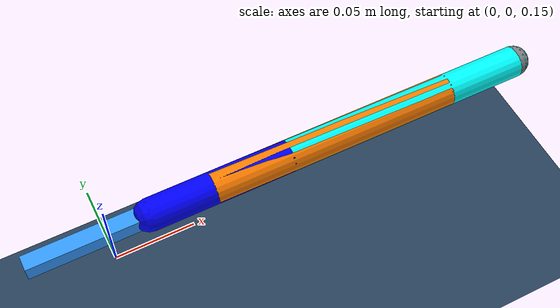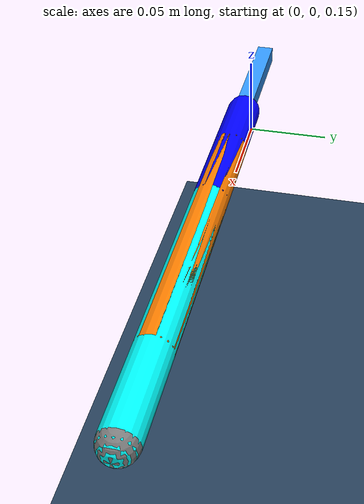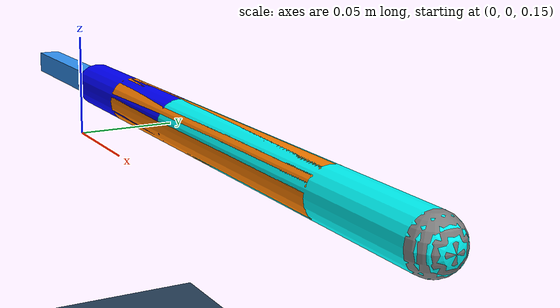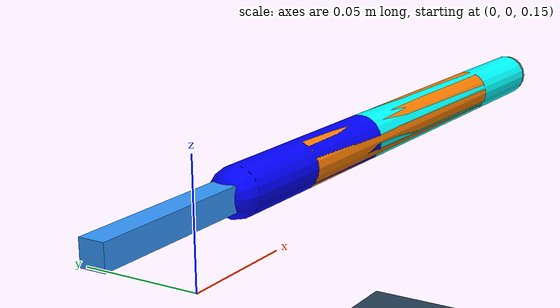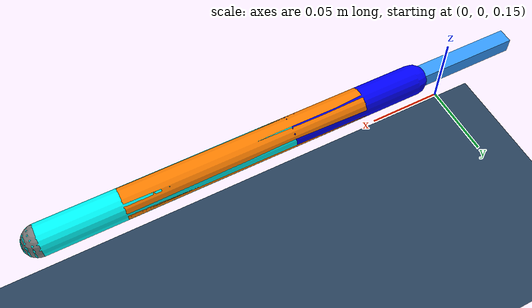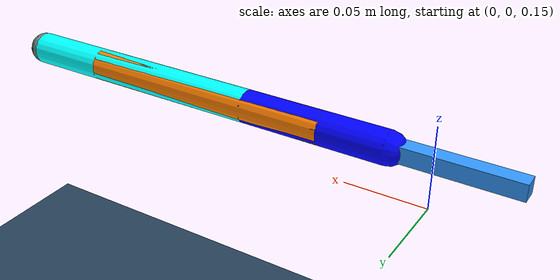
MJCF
<mujoco model="FiveBar2D">

  <compiler inertiafromgeom="true" angle="radian" />
  <option timestep="0.001" integrator="implicit" />

  <default>
    <joint damping="0.1" />

    <geom friction="2 0.005 0.0001" contype="1" conaffinity="2" />

  </default>

  <asset>
    <texture name="grid" type="2d" builtin="checker" rgb1=".1 .2 .3" rgb2=".2 .3 .4" width="300" height="300" mark="edge" markrgb=".2 .3 .4" />
    <material name="ground" texture="grid" texrepeat="1 1" texuniform="true" reflectance="0.1" />

  </asset>

  <visual>
    <global offwidth="1920" offheight="1080" />
  </visual>

  <worldbody>

    <geom name="floor" type="plane" size="5 5 0.25" material="ground" contype="2" conaffinity="1" />

    <body name="root" pos="0 0 0.18">

      <joint name="slide_x" type="slide" axis="1 0 0" />
      <joint name="slide_z" type="slide" axis="0 0 1" />

      <body name="base">

        <geom name="torso" type="box" size="0.05 0.005 0.005" rgba="0.2 0.6 1 1" mass="0.54" />

        <body name="l1_left" pos="-0.025 0 0">

          <joint name="hip_left" type="hinge" axis="0 -1 0" range="-2 2"/>

          <geom name="thigh_left" type="capsule" fromto="0 0 0 0.09 0 0" size="0.005" rgba="1 0 0 1" mass="0.0216" />

          <body name="l2_left" pos="0.09 0 0">

            <joint name="knee_left" type="hinge" axis="0 -1 0" range="-2 2"/>

            <geom name="shank_left" type="capsule" fromto="0 0 0 0.16 0 0" size="0.01" rgba="1 0.5 0 1" mass="0.0384" />
            <geom name="foot_left" type="sphere" size="0.01" pos="0.16 0 0" mass="0" />

            <site name="left_tip" pos="0.16 0 0" />

          </body>
        </body>

        <body name="l1_right" pos="0.025 0 0">

          <joint name="hip_right" type="hinge" axis="0 -1 0" range="-2 2"/>

          <geom name="thigh_right" type="capsule" fromto="0 0 0 0.09 0 0" size="0.01" rgba="0 0 1 1" mass="0.0216" />

          <body name="l2_right" pos="0.09 0 0">

            <joint name="knee_right" type="hinge" axis="0 -1 0" range="-2 2"/>

            <geom name="shank_right" type="capsule" fromto="0 0 0 0.16 0 0" size="0.01" rgba="0 1 1 1" mass="0.0384" />

            <geom name="foot_right" type="sphere" size="0.01" pos="0.16 0 0" mass="0" />

            <site name="right_tip" pos="0.16 0 0" />

          </body>
        </body>

      </body>
    </body>
  </worldbody>

  <equality>
    <connect site1="left_tip" site2="right_tip" solref="0.1 1" solimp="0.9 0.95 0.01" />
  </equality>

  <actuator>
    <motor name="motor_left" joint="hip_left" ctrlrange="-1.5 1.5" />
    <motor name="motor_right" joint="hip_right" ctrlrange="-1.5 1.5" />
  </actuator>

</mujoco>
